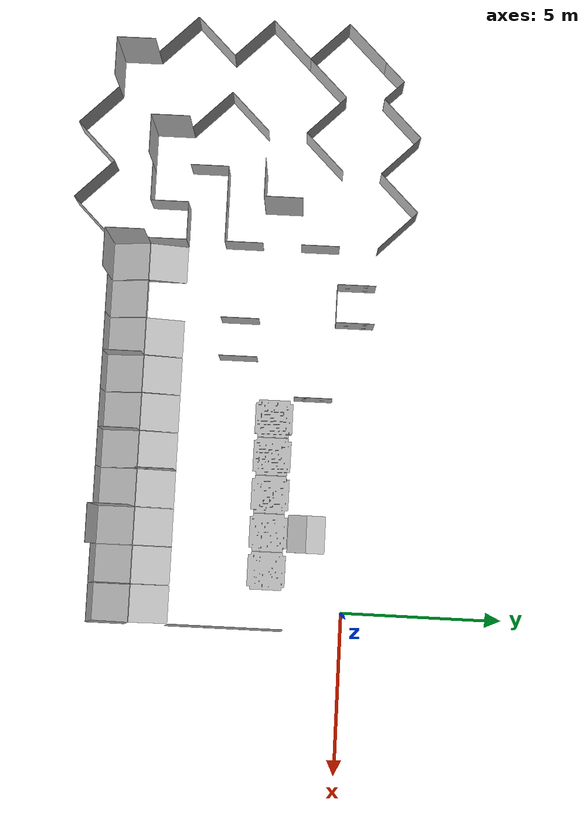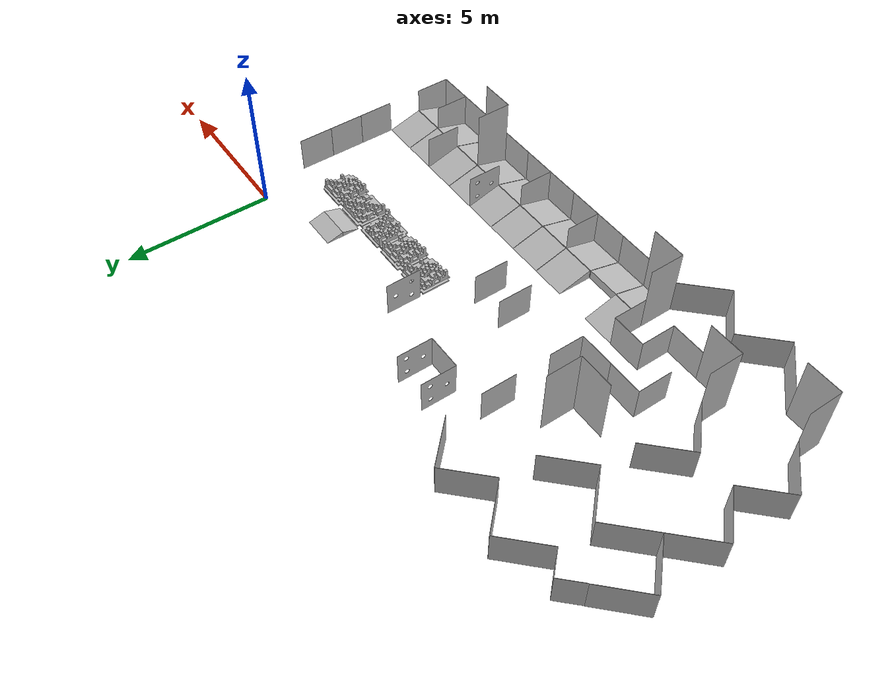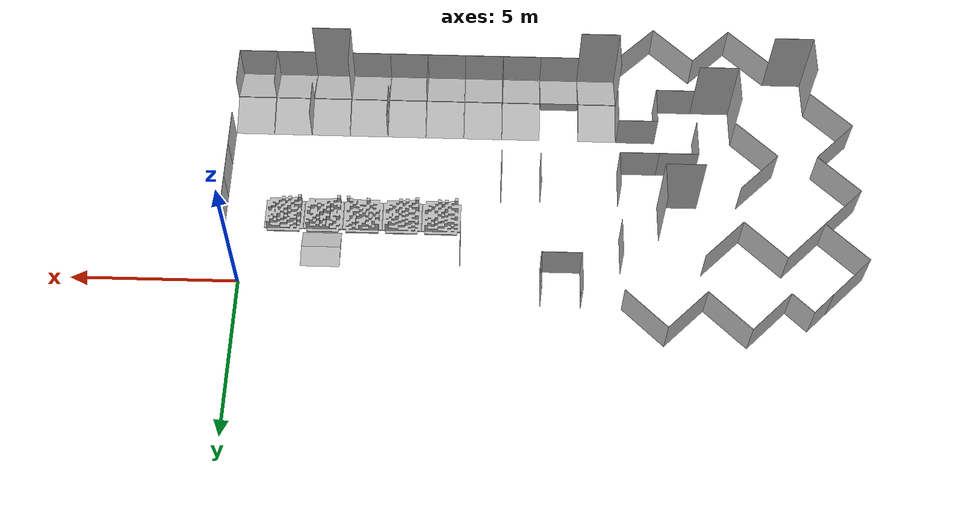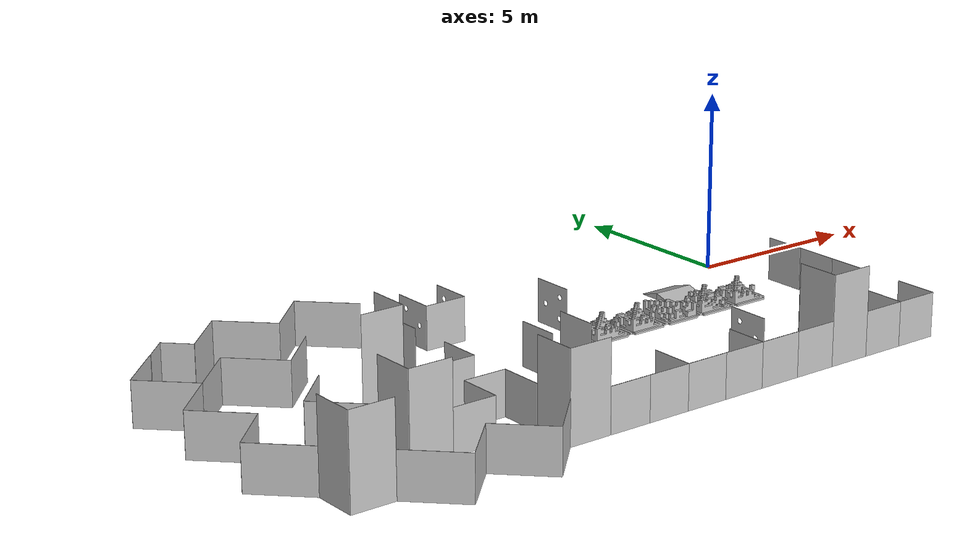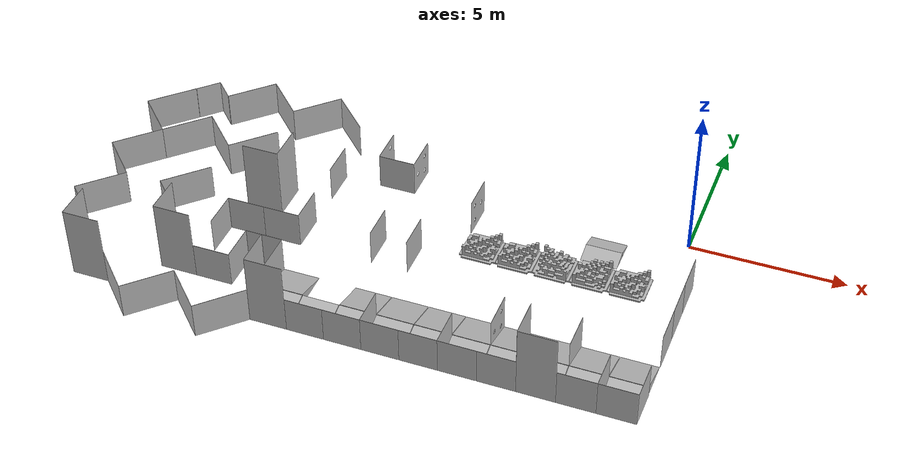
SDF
<sdf version="1.4">
 <world name="default">
  <include><uri>model://sun</uri></include>
  <model name="small_wall_30">
   <static>true</static>
   <link name="small_wall_30_link">
    <pose>1.2 -7.2 0 0 0 -4.71239</pose>
    <collision name="small_wall_30_collision">
     <geometry><mesh><uri>file://robocup/walls/small_wall.dae</uri><scale>1 1 1</scale></mesh></geometry>
    </collision>
    <visual name="small_wall_30_visual">
     <cast_shadows>false</cast_shadows>
     <geometry><mesh><uri>file://robocup/walls/small_wall.dae</uri><scale>1 1 1</scale></mesh></geometry>
    </visual>
   </link>
  </model>
  <model name="small_wall_31">
   <static>true</static>
   <link name="small_wall_31_link">
    <pose>0 -7.2 0 0 0 -3.14159</pose>
    <collision name="small_wall_31_collision">
     <geometry><mesh><uri>file://robocup/walls/small_wall.dae</uri><scale>1 1 1</scale></mesh></geometry>
    </collision>
    <visual name="small_wall_31_visual">
     <cast_shadows>false</cast_shadows>
     <geometry><mesh><uri>file://robocup/walls/small_wall.dae</uri><scale>1 1 1</scale></mesh></geometry>
    </visual>
   </link>
  </model>
  <model name="small_wall_32">
   <static>true</static>
   <link name="small_wall_32_link">
    <pose>0 -7.2 0 0 0 -4.71239</pose>
    <collision name="small_wall_32_collision">
     <geometry><mesh><uri>file://robocup/walls/small_wall.dae</uri><scale>1 1 1</scale></mesh></geometry>
    </collision>
    <visual name="small_wall_32_visual">
     <cast_shadows>false</cast_shadows>
     <geometry><mesh><uri>file://robocup/walls/small_wall.dae</uri><scale>1 1 1</scale></mesh></geometry>
    </visual>
   </link>
  </model>
  <model name="small_wall_33">
   <static>true</static>
   <link name="small_wall_33_link">
    <pose>-1.2 -7.2 0 0 0 -3.14159</pose>
    <collision name="small_wall_33_collision">
     <geometry><mesh><uri>file://robocup/walls/small_wall.dae</uri><scale>1 1 1</scale></mesh></geometry>
    </collision>
    <visual name="small_wall_33_visual">
     <cast_shadows>false</cast_shadows>
     <geometry><mesh><uri>file://robocup/walls/small_wall.dae</uri><scale>1 1 1</scale></mesh></geometry>
    </visual>
   </link>
  </model>
  <model name="tall_wall_10">
   <static>true</static>
   <link name="tall_wall_10_link">
    <pose>-2.4 -8.4 0 0 0 0</pose>
    <collision name="tall_wall_10_collision">
     <geometry><mesh><uri>file://robocup/walls/tall_wall.dae</uri><scale>1 1 1</scale></mesh></geometry>
    </collision>
    <visual name="tall_wall_10_visual">
     <cast_shadows>false</cast_shadows>
     <geometry><mesh><uri>file://robocup/walls/tall_wall.dae</uri><scale>1 1 1</scale></mesh></geometry>
    </visual>
   </link>
  </model>
  <model name="tall_wall_11">
   <static>true</static>
   <link name="tall_wall_11_link">
    <pose>-3.6 -7.2 0 0 0 -1.5708</pose>
    <collision name="tall_wall_11_collision">
     <geometry><mesh><uri>file://robocup/walls/tall_wall.dae</uri><scale>1 1 1</scale></mesh></geometry>
    </collision>
    <visual name="tall_wall_11_visual">
     <cast_shadows>false</cast_shadows>
     <geometry><mesh><uri>file://robocup/walls/tall_wall.dae</uri><scale>1 1 1</scale></mesh></geometry>
    </visual>
   </link>
  </model>
  <model name="small_wall_34">
   <static>true</static>
   <link name="small_wall_34_link">
    <pose>-3.6 -8.4 0 0 0 0</pose>
    <collision name="small_wall_34_collision">
     <geometry><mesh><uri>file://robocup/walls/small_wall.dae</uri><scale>1 1 1</scale></mesh></geometry>
    </collision>
    <visual name="small_wall_34_visual">
     <cast_shadows>false</cast_shadows>
     <geometry><mesh><uri>file://robocup/walls/small_wall.dae</uri><scale>1 1 1</scale></mesh></geometry>
    </visual>
   </link>
  </model>
  <model name="small_wall_35">
   <static>true</static>
   <link name="small_wall_35_link">
    <pose>-4.8 -7.2 0 0 0 -3.14159</pose>
    <collision name="small_wall_35_collision">
     <geometry><mesh><uri>file://robocup/walls/small_wall.dae</uri><scale>1 1 1</scale></mesh></geometry>
    </collision>
    <visual name="small_wall_35_visual">
     <cast_shadows>false</cast_shadows>
     <geometry><mesh><uri>file://robocup/walls/small_wall.dae</uri><scale>1 1 1</scale></mesh></geometry>
    </visual>
   </link>
  </model>
  <model name="small_wall_36">
   <static>true</static>
   <link name="small_wall_36_link">
    <pose>-6 -7.2 0 0 0 -1.5708</pose>
    <collision name="small_wall_36_collision">
     <geometry><mesh><uri>file://robocup/walls/small_wall.dae</uri><scale>1 1 1</scale></mesh></geometry>
    </collision>
    <visual name="small_wall_36_visual">
     <cast_shadows>false</cast_shadows>
     <geometry><mesh><uri>file://robocup/walls/small_wall.dae</uri><scale>1 1 1</scale></mesh></geometry>
    </visual>
   </link>
  </model>
  <model name="small_wall_37">
   <static>true</static>
   <link name="small_wall_37_link">
    <pose>-6 -8.4 0 0 0 0</pose>
    <collision name="small_wall_37_collision">
     <geometry><mesh><uri>file://robocup/walls/small_wall.dae</uri><scale>1 1 1</scale></mesh></geometry>
    </collision>
    <visual name="small_wall_37_visual">
     <cast_shadows>false</cast_shadows>
     <geometry><mesh><uri>file://robocup/walls/small_wall.dae</uri><scale>1 1 1</scale></mesh></geometry>
    </visual>
   </link>
  </model>
  <model name="small_wall_38">
   <static>true</static>
   <link name="small_wall_38_link">
    <pose>-7.2 -7.2 0 0 0 -3.14159</pose>
    <collision name="small_wall_38_collision">
     <geometry><mesh><uri>file://robocup/walls/small_wall.dae</uri><scale>1 1 1</scale></mesh></geometry>
    </collision>
    <visual name="small_wall_38_visual">
     <cast_shadows>false</cast_shadows>
     <geometry><mesh><uri>file://robocup/walls/small_wall.dae</uri><scale>1 1 1</scale></mesh></geometry>
    </visual>
   </link>
  </model>
  <model name="small_wall_39">
   <static>true</static>
   <link name="small_wall_39_link">
    <pose>-8.4 -7.2 0 0 0 -3.14159</pose>
    <collision name="small_wall_39_collision">
     <geometry><mesh><uri>file://robocup/walls/small_wall.dae</uri><scale>1 1 1</scale></mesh></geometry>
    </collision>
    <visual name="small_wall_39_visual">
     <cast_shadows>false</cast_shadows>
     <geometry><mesh><uri>file://robocup/walls/small_wall.dae</uri><scale>1 1 1</scale></mesh></geometry>
    </visual>
   </link>
  </model>
  <model name="tall_wall_12">
   <static>true</static>
   <link name="tall_wall_12_link">
    <pose>-10.8 -7.2 0 0 0 -3.14159</pose>
    <collision name="tall_wall_12_collision">
     <geometry><mesh><uri>file://robocup/walls/tall_wall.dae</uri><scale>1 1 1</scale></mesh></geometry>
    </collision>
    <visual name="tall_wall_12_visual">
     <cast_shadows>false</cast_shadows>
     <geometry><mesh><uri>file://robocup/walls/tall_wall.dae</uri><scale>1 1 1</scale></mesh></geometry>
    </visual>
   </link>
  </model>
  <model name="tall_wall_13">
   <static>true</static>
   <link name="tall_wall_13_link">
    <pose>-12 -7.2 0 0 0 -1.5708</pose>
    <collision name="tall_wall_13_collision">
     <geometry><mesh><uri>file://robocup/walls/tall_wall.dae</uri><scale>1 1 1</scale></mesh></geometry>
    </collision>
    <visual name="tall_wall_13_visual">
     <cast_shadows>false</cast_shadows>
     <geometry><mesh><uri>file://robocup/walls/tall_wall.dae</uri><scale>1 1 1</scale></mesh></geometry>
    </visual>
   </link>
  </model>
  <model name="small_wall_40">
   <static>true</static>
   <link name="small_wall_40_link">
    <pose>-9.6 -7.2 0 0 0 -3.14159</pose>
    <collision name="small_wall_40_collision">
     <geometry><mesh><uri>file://robocup/walls/small_wall.dae</uri><scale>1 1 1</scale></mesh></geometry>
    </collision>
    <visual name="small_wall_40_visual">
     <cast_shadows>false</cast_shadows>
     <geometry><mesh><uri>file://robocup/walls/small_wall.dae</uri><scale>1 1 1</scale></mesh></geometry>
    </visual>
   </link>
  </model>
  <model name="small_wall_41">
   <static>true</static>
   <link name="small_wall_41_link">
    <pose>-12 -6 0 0 0 0</pose>
    <collision name="small_wall_41_collision">
     <geometry><mesh><uri>file://robocup/walls/small_wall.dae</uri><scale>1 1 1</scale></mesh></geometry>
    </collision>
    <visual name="small_wall_41_visual">
     <cast_shadows>false</cast_shadows>
     <geometry><mesh><uri>file://robocup/walls/small_wall.dae</uri><scale>1 1 1</scale></mesh></geometry>
    </visual>
   </link>
  </model>
  <model name="small_wall_42">
   <static>true</static>
   <link name="small_wall_42_link">
    <pose>-12 -6 0 0 0 -4.71239</pose>
    <collision name="small_wall_42_collision">
     <geometry><mesh><uri>file://robocup/walls/small_wall.dae</uri><scale>1 1 1</scale></mesh></geometry>
    </collision>
    <visual name="small_wall_42_visual">
     <cast_shadows>false</cast_shadows>
     <geometry><mesh><uri>file://robocup/walls/small_wall.dae</uri><scale>1 1 1</scale></mesh></geometry>
    </visual>
   </link>
  </model>
  <model name="tall_wall_14">
   <static>true</static>
   <link name="tall_wall_14_link">
    <pose>-14.4 -6 0 0 0 -3.14159</pose>
    <collision name="tall_wall_14_collision">
     <geometry><mesh><uri>file://robocup/walls/tall_wall.dae</uri><scale>1 1 1</scale></mesh></geometry>
    </collision>
    <visual name="tall_wall_14_visual">
     <cast_shadows>false</cast_shadows>
     <geometry><mesh><uri>file://robocup/walls/tall_wall.dae</uri><scale>1 1 1</scale></mesh></geometry>
    </visual>
   </link>
  </model>
  <model name="tall_wall_15">
   <static>true</static>
   <link name="tall_wall_15_link">
    <pose>-14.4 -6 0 0 0 -4.71239</pose>
    <collision name="tall_wall_15_collision">
     <geometry><mesh><uri>file://robocup/walls/tall_wall.dae</uri><scale>1 1 1</scale></mesh></geometry>
    </collision>
    <visual name="tall_wall_15_visual">
     <cast_shadows>false</cast_shadows>
     <geometry><mesh><uri>file://robocup/walls/tall_wall.dae</uri><scale>1 1 1</scale></mesh></geometry>
    </visual>
   </link>
  </model>
  <model name="small_wall_43">
   <static>true</static>
   <link name="small_wall_43_link">
    <pose>-13.2 -6 0 0 0 -3.14159</pose>
    <collision name="small_wall_43_collision">
     <geometry><mesh><uri>file://robocup/walls/small_wall.dae</uri><scale>1 1 1</scale></mesh></geometry>
    </collision>
    <visual name="small_wall_43_visual">
     <cast_shadows>false</cast_shadows>
     <geometry><mesh><uri>file://robocup/walls/small_wall.dae</uri><scale>1 1 1</scale></mesh></geometry>
    </visual>
   </link>
  </model>
  <model name="small_wall_44">
   <static>true</static>
   <link name="small_wall_44_link">
    <pose>-13.2 -4.8 0 0 0 -4.71239</pose>
    <collision name="small_wall_44_collision">
     <geometry><mesh><uri>file://robocup/walls/small_wall.dae</uri><scale>1 1 1</scale></mesh></geometry>
    </collision>
    <visual name="small_wall_44_visual">
     <cast_shadows>false</cast_shadows>
     <geometry><mesh><uri>file://robocup/walls/small_wall.dae</uri><scale>1 1 1</scale></mesh></geometry>
    </visual>
   </link>
  </model>
  <model name="small_wall_45">
   <static>true</static>
   <link name="small_wall_45_link">
    <pose>-13.2 -3.6 0 0 0 -3.14159</pose>
    <collision name="small_wall_45_collision">
     <geometry><mesh><uri>file://robocup/walls/small_wall.dae</uri><scale>1 1 1</scale></mesh></geometry>
    </collision>
    <visual name="small_wall_45_visual">
     <cast_shadows>false</cast_shadows>
     <geometry><mesh><uri>file://robocup/walls/small_wall.dae</uri><scale>1 1 1</scale></mesh></geometry>
    </visual>
   </link>
  </model>
  <model name="small_wall_46">
   <static>true</static>
   <link name="small_wall_46_link">
    <pose>-12 -3.6 0 0 0 -3.14159</pose>
    <collision name="small_wall_46_collision">
     <geometry><mesh><uri>file://robocup/walls/small_wall.dae</uri><scale>1 1 1</scale></mesh></geometry>
    </collision>
    <visual name="small_wall_46_visual">
     <cast_shadows>false</cast_shadows>
     <geometry><mesh><uri>file://robocup/walls/small_wall.dae</uri><scale>1 1 1</scale></mesh></geometry>
    </visual>
   </link>
  </model>
  <model name="small_wall_47">
   <static>true</static>
   <link name="small_wall_47_link">
    <pose>-10.8 -3.6 0 0 0 -4.71239</pose>
    <collision name="small_wall_47_collision">
     <geometry><mesh><uri>file://robocup/walls/small_wall.dae</uri><scale>1 1 1</scale></mesh></geometry>
    </collision>
    <visual name="small_wall_47_visual">
     <cast_shadows>false</cast_shadows>
     <geometry><mesh><uri>file://robocup/walls/small_wall.dae</uri><scale>1 1 1</scale></mesh></geometry>
    </visual>
   </link>
  </model>
  <model name="tall_wall_16">
   <static>true</static>
   <link name="tall_wall_16_link">
    <pose>-13.2 -2.4 0 0 0 -1.5708</pose>
    <collision name="tall_wall_16_collision">
     <geometry><mesh><uri>file://robocup/walls/tall_wall.dae</uri><scale>1 1 1</scale></mesh></geometry>
    </collision>
    <visual name="tall_wall_16_visual">
     <cast_shadows>false</cast_shadows>
     <geometry><mesh><uri>file://robocup/walls/tall_wall.dae</uri><scale>1 1 1</scale></mesh></geometry>
    </visual>
   </link>
  </model>
  <model name="tall_wall_17">
   <static>true</static>
   <link name="tall_wall_17_link">
    <pose>-13.2 -3.6 0 0 0 0</pose>
    <collision name="tall_wall_17_collision">
     <geometry><mesh><uri>file://robocup/walls/tall_wall.dae</uri><scale>1 1 1</scale></mesh></geometry>
    </collision>
    <visual name="tall_wall_17_visual">
     <cast_shadows>false</cast_shadows>
     <geometry><mesh><uri>file://robocup/walls/tall_wall.dae</uri><scale>1 1 1</scale></mesh></geometry>
    </visual>
   </link>
  </model>
  <model name="wall_diag_120_1">
   <static>true</static>
   <link name="wall_diag_120_1_link">
    <pose>-12 1.2 0 0 0 -1.5708</pose>
    <collision name="wall_diag_120_1_collision">
     <geometry><mesh><uri>file://robocup/walls/wall_diag_120.dae</uri><scale>1 1 1</scale></mesh></geometry>
    </collision>
    <visual name="wall_diag_120_1_visual">
     <cast_shadows>false</cast_shadows>
     <geometry><mesh><uri>file://robocup/walls/wall_diag_120.dae</uri><scale>1 1 1</scale></mesh></geometry>
    </visual>
   </link>
  </model>
  <model name="wall_diag_120_2">
   <static>true</static>
   <link name="wall_diag_120_2_link">
    <pose>-18 -6 0 0 0 -4.71239</pose>
    <collision name="wall_diag_120_2_collision">
     <geometry><mesh><uri>file://robocup/walls/wall_diag_120.dae</uri><scale>1 1 1</scale></mesh></geometry>
    </collision>
    <visual name="wall_diag_120_2_visual">
     <cast_shadows>false</cast_shadows>
     <geometry><mesh><uri>file://robocup/walls/wall_diag_120.dae</uri><scale>1 1 1</scale></mesh></geometry>
    </visual>
   </link>
  </model>
  <model name="full_ramp_1">
   <static>true</static>
   <link name="full_ramp_1_link">
    <pose>0 -6 0 0 0 0</pose>
    <collision name="full_ramp_1_collision">
     <geometry><mesh><uri>file://robocup/ramps/full_ramp.dae</uri><scale>1 1 1</scale></mesh></geometry>
    </collision>
    <visual name="full_ramp_1_visual">
     <cast_shadows>false</cast_shadows>
     <geometry><mesh><uri>file://robocup/ramps/full_ramp.dae</uri><scale>1 1 1</scale></mesh></geometry>
    </visual>
   </link>
  </model>
  <model name="full_ramp_2">
   <static>true</static>
   <link name="full_ramp_2_link">
    <pose>-1.2 -6 0 0 0 0</pose>
    <collision name="full_ramp_2_collision">
     <geometry><mesh><uri>file://robocup/ramps/full_ramp.dae</uri><scale>1 1 1</scale></mesh></geometry>
    </collision>
    <visual name="full_ramp_2_visual">
     <cast_shadows>false</cast_shadows>
     <geometry><mesh><uri>file://robocup/ramps/full_ramp.dae</uri><scale>1 1 1</scale></mesh></geometry>
    </visual>
   </link>
  </model>
  <model name="full_ramp_3">
   <static>true</static>
   <link name="full_ramp_3_link">
    <pose>-2.4 -6 0 0 0 0</pose>
    <collision name="full_ramp_3_collision">
     <geometry><mesh><uri>file://robocup/ramps/full_ramp.dae</uri><scale>1 1 1</scale></mesh></geometry>
    </collision>
    <visual name="full_ramp_3_visual">
     <cast_shadows>false</cast_shadows>
     <geometry><mesh><uri>file://robocup/ramps/full_ramp.dae</uri><scale>1 1 1</scale></mesh></geometry>
    </visual>
   </link>
  </model>
  <model name="full_ramp_4">
   <static>true</static>
   <link name="full_ramp_4_link">
    <pose>-3.6 -6 0 0 0 0</pose>
    <collision name="full_ramp_4_collision">
     <geometry><mesh><uri>file://robocup/ramps/full_ramp.dae</uri><scale>1 1 1</scale></mesh></geometry>
    </collision>
    <visual name="full_ramp_4_visual">
     <cast_shadows>false</cast_shadows>
     <geometry><mesh><uri>file://robocup/ramps/full_ramp.dae</uri><scale>1 1 1</scale></mesh></geometry>
    </visual>
   </link>
  </model>
  <model name="full_ramp_5">
   <static>true</static>
   <link name="full_ramp_5_link">
    <pose>-4.8 -6 0 0 0 0</pose>
    <collision name="full_ramp_5_collision">
     <geometry><mesh><uri>file://robocup/ramps/full_ramp.dae</uri><scale>1 1 1</scale></mesh></geometry>
    </collision>
    <visual name="full_ramp_5_visual">
     <cast_shadows>false</cast_shadows>
     <geometry><mesh><uri>file://robocup/ramps/full_ramp.dae</uri><scale>1 1 1</scale></mesh></geometry>
    </visual>
   </link>
  </model>
  <model name="full_ramp_6">
   <static>true</static>
   <link name="full_ramp_6_link">
    <pose>-6 -6 0 0 0 0</pose>
    <collision name="full_ramp_6_collision">
     <geometry><mesh><uri>file://robocup/ramps/full_ramp.dae</uri><scale>1 1 1</scale></mesh></geometry>
    </collision>
    <visual name="full_ramp_6_visual">
     <cast_shadows>false</cast_shadows>
     <geometry><mesh><uri>file://robocup/ramps/full_ramp.dae</uri><scale>1 1 1</scale></mesh></geometry>
    </visual>
   </link>
  </model>
  <model name="full_ramp_7">
   <static>true</static>
   <link name="full_ramp_7_link">
    <pose>-7.2 -6 0 0 0 0</pose>
    <collision name="full_ramp_7_collision">
     <geometry><mesh><uri>file://robocup/ramps/full_ramp.dae</uri><scale>1 1 1</scale></mesh></geometry>
    </collision>
    <visual name="full_ramp_7_visual">
     <cast_shadows>false</cast_shadows>
     <geometry><mesh><uri>file://robocup/ramps/full_ramp.dae</uri><scale>1 1 1</scale></mesh></geometry>
    </visual>
   </link>
  </model>
  <model name="full_ramp_8">
   <static>true</static>
   <link name="full_ramp_8_link">
    <pose>-8.4 -6 0 0 0 0</pose>
    <collision name="full_ramp_8_collision">
     <geometry><mesh><uri>file://robocup/ramps/full_ramp.dae</uri><scale>1 1 1</scale></mesh></geometry>
    </collision>
    <visual name="full_ramp_8_visual">
     <cast_shadows>false</cast_shadows>
     <geometry><mesh><uri>file://robocup/ramps/full_ramp.dae</uri><scale>1 1 1</scale></mesh></geometry>
    </visual>
   </link>
  </model>
  <model name="full_ramp_9">
   <static>true</static>
   <link name="full_ramp_9_link">
    <pose>-10.8 -6 0 0 0 0</pose>
    <collision name="full_ramp_9_collision">
     <geometry><mesh><uri>file://robocup/ramps/full_ramp.dae</uri><scale>1 1 1</scale></mesh></geometry>
    </collision>
    <visual name="full_ramp_9_visual">
     <cast_shadows>false</cast_shadows>
     <geometry><mesh><uri>file://robocup/ramps/full_ramp.dae</uri><scale>1 1 1</scale></mesh></geometry>
    </visual>
   </link>
  </model>
  <model name="full_ramp_10">
   <static>true</static>
   <link name="full_ramp_10_link">
    <pose>-10.8 -7.2 0 0 0 -3.14159</pose>
    <collision name="full_ramp_10_collision">
     <geometry><mesh><uri>file://robocup/ramps/full_ramp.dae</uri><scale>1 1 1</scale></mesh></geometry>
    </collision>
    <visual name="full_ramp_10_visual">
     <cast_shadows>false</cast_shadows>
     <geometry><mesh><uri>file://robocup/ramps/full_ramp.dae</uri><scale>1 1 1</scale></mesh></geometry>
    </visual>
   </link>
  </model>
  <model name="full_ramp_11">
   <static>true</static>
   <link name="full_ramp_11_link">
    <pose>-9.6 -7.2 0 0 0 -3.14159</pose>
    <collision name="full_ramp_11_collision">
     <geometry><mesh><uri>file://robocup/ramps/full_ramp.dae</uri><scale>1 1 1</scale></mesh></geometry>
    </collision>
    <visual name="full_ramp_11_visual">
     <cast_shadows>false</cast_shadows>
     <geometry><mesh><uri>file://robocup/ramps/full_ramp.dae</uri><scale>1 1 1</scale></mesh></geometry>
    </visual>
   </link>
  </model>
  <model name="full_ramp_12">
   <static>true</static>
   <link name="full_ramp_12_link">
    <pose>-8.4 -7.2 0 0 0 -3.14159</pose>
    <collision name="full_ramp_12_collision">
     <geometry><mesh><uri>file://robocup/ramps/full_ramp.dae</uri><scale>1 1 1</scale></mesh></geometry>
    </collision>
    <visual name="full_ramp_12_visual">
     <cast_shadows>false</cast_shadows>
     <geometry><mesh><uri>file://robocup/ramps/full_ramp.dae</uri><scale>1 1 1</scale></mesh></geometry>
    </visual>
   </link>
  </model>
  <model name="full_ramp_13">
   <static>true</static>
   <link name="full_ramp_13_link">
    <pose>-7.2 -7.2 0 0 0 -3.14159</pose>
    <collision name="full_ramp_13_collision">
     <geometry><mesh><uri>file://robocup/ramps/full_ramp.dae</uri><scale>1 1 1</scale></mesh></geometry>
    </collision>
    <visual name="full_ramp_13_visual">
     <cast_shadows>false</cast_shadows>
     <geometry><mesh><uri>file://robocup/ramps/full_ramp.dae</uri><scale>1 1 1</scale></mesh></geometry>
    </visual>
   </link>
  </model>
  <model name="full_ramp_14">
   <static>true</static>
   <link name="full_ramp_14_link">
    <pose>-6 -7.2 0 0 0 -3.14159</pose>
    <collision name="full_ramp_14_collision">
     <geometry><mesh><uri>file://robocup/ramps/full_ramp.dae</uri><scale>1 1 1</scale></mesh></geometry>
    </collision>
    <visual name="full_ramp_14_visual">
     <cast_shadows>false</cast_shadows>
     <geometry><mesh><uri>file://robocup/ramps/full_ramp.dae</uri><scale>1 1 1</scale></mesh></geometry>
    </visual>
   </link>
  </model>
  <model name="full_ramp_15">
   <static>true</static>
   <link name="full_ramp_15_link">
    <pose>-4.8 -7.2 0 0 0 -3.14159</pose>
    <collision name="full_ramp_15_collision">
     <geometry><mesh><uri>file://robocup/ramps/full_ramp.dae</uri><scale>1 1 1</scale></mesh></geometry>
    </collision>
    <visual name="full_ramp_15_visual">
     <cast_shadows>false</cast_shadows>
     <geometry><mesh><uri>file://robocup/ramps/full_ramp.dae</uri><scale>1 1 1</scale></mesh></geometry>
    </visual>
   </link>
  </model>
  <model name="full_ramp_16">
   <static>true</static>
   <link name="full_ramp_16_link">
    <pose>-3.6 -7.2 0 0 0 -3.14159</pose>
    <collision name="full_ramp_16_collision">
     <geometry><mesh><uri>file://robocup/ramps/full_ramp.dae</uri><scale>1 1 1</scale></mesh></geometry>
    </collision>
    <visual name="full_ramp_16_visual">
     <cast_shadows>false</cast_shadows>
     <geometry><mesh><uri>file://robocup/ramps/full_ramp.dae</uri><scale>1 1 1</scale></mesh></geometry>
    </visual>
   </link>
  </model>
  <model name="full_ramp_17">
   <static>true</static>
   <link name="full_ramp_17_link">
    <pose>-2.4 -7.2 0 0 0 -3.14159</pose>
    <collision name="full_ramp_17_collision">
     <geometry><mesh><uri>file://robocup/ramps/full_ramp.dae</uri><scale>1 1 1</scale></mesh></geometry>
    </collision>
    <visual name="full_ramp_17_visual">
     <cast_shadows>false</cast_shadows>
     <geometry><mesh><uri>file://robocup/ramps/full_ramp.dae</uri><scale>1 1 1</scale></mesh></geometry>
    </visual>
   </link>
  </model>
  <model name="full_ramp_18">
   <static>true</static>
   <link name="full_ramp_18_link">
    <pose>-1.2 -7.2 0 0 0 -3.14159</pose>
    <collision name="full_ramp_18_collision">
     <geometry><mesh><uri>file://robocup/ramps/full_ramp.dae</uri><scale>1 1 1</scale></mesh></geometry>
    </collision>
    <visual name="full_ramp_18_visual">
     <cast_shadows>false</cast_shadows>
     <geometry><mesh><uri>file://robocup/ramps/full_ramp.dae</uri><scale>1 1 1</scale></mesh></geometry>
    </visual>
   </link>
  </model>
  <model name="full_ramp_19">
   <static>true</static>
   <link name="full_ramp_19_link">
    <pose>0 -7.2 0 0 0 -3.14159</pose>
    <collision name="full_ramp_19_collision">
     <geometry><mesh><uri>file://robocup/ramps/full_ramp.dae</uri><scale>1 1 1</scale></mesh></geometry>
    </collision>
    <visual name="full_ramp_19_visual">
     <cast_shadows>false</cast_shadows>
     <geometry><mesh><uri>file://robocup/ramps/full_ramp.dae</uri><scale>1 1 1</scale></mesh></geometry>
    </visual>
   </link>
  </model>
  <model name="small_wall_48">
   <static>true</static>
   <link name="small_wall_48_link">
    <pose>1.2 -2.4 0 0 0 -4.71239</pose>
    <collision name="small_wall_48_collision">
     <geometry><mesh><uri>file://robocup/walls/small_wall.dae</uri><scale>1 1 1</scale></mesh></geometry>
    </collision>
    <visual name="small_wall_48_visual">
     <cast_shadows>false</cast_shadows>
     <geometry><mesh><uri>file://robocup/walls/small_wall.dae</uri><scale>1 1 1</scale></mesh></geometry>
    </visual>
   </link>
  </model>
  <model name="small_wall_49">
   <static>true</static>
   <link name="small_wall_49_link">
    <pose>0 -3.6 0 0 0 -1.5708</pose>
    <collision name="small_wall_49_collision">
     <geometry><mesh><uri>file://robocup/walls/small_wall.dae</uri><scale>1 1 1</scale></mesh></geometry>
    </collision>
    <visual name="small_wall_49_visual">
     <cast_shadows>false</cast_shadows>
     <geometry><mesh><uri>file://robocup/walls/small_wall.dae</uri><scale>1 1 1</scale></mesh></geometry>
    </visual>
   </link>
  </model>
  <model name="small_wall_50">
   <static>true</static>
   <link name="small_wall_50_link">
    <pose>0 -4.8 0 0 0 -1.5708</pose>
    <collision name="small_wall_50_collision">
     <geometry><mesh><uri>file://robocup/walls/small_wall.dae</uri><scale>1 1 1</scale></mesh></geometry>
    </collision>
    <visual name="small_wall_50_visual">
     <cast_shadows>false</cast_shadows>
     <geometry><mesh><uri>file://robocup/walls/small_wall.dae</uri><scale>1 1 1</scale></mesh></geometry>
    </visual>
   </link>
  </model>
  <model name="wall_diag_120_3">
   <static>true</static>
   <link name="wall_diag_120_3_link">
    <pose>-13.2 1.2 0 0 0 0</pose>
    <collision name="wall_diag_120_3_collision">
     <geometry><mesh><uri>file://robocup/walls/wall_diag_120.dae</uri><scale>1 1 1</scale></mesh></geometry>
    </collision>
    <visual name="wall_diag_120_3_visual">
     <cast_shadows>false</cast_shadows>
     <geometry><mesh><uri>file://robocup/walls/wall_diag_120.dae</uri><scale>1 1 1</scale></mesh></geometry>
    </visual>
   </link>
  </model>
  <model name="wall_diag_120_4">
   <static>true</static>
   <link name="wall_diag_120_4_link">
    <pose>-15.6 1.2 0 0 0 0</pose>
    <collision name="wall_diag_120_4_collision">
     <geometry><mesh><uri>file://robocup/walls/wall_diag_120.dae</uri><scale>1 1 1</scale></mesh></geometry>
    </collision>
    <visual name="wall_diag_120_4_visual">
     <cast_shadows>false</cast_shadows>
     <geometry><mesh><uri>file://robocup/walls/wall_diag_120.dae</uri><scale>1 1 1</scale></mesh></geometry>
    </visual>
   </link>
  </model>
  <model name="wall_diag_120_5">
   <static>true</static>
   <link name="wall_diag_120_5_link">
    <pose>-14.4 1.2 0 0 0 -4.71239</pose>
    <collision name="wall_diag_120_5_collision">
     <geometry><mesh><uri>file://robocup/walls/wall_diag_120.dae</uri><scale>1 1 1</scale></mesh></geometry>
    </collision>
    <visual name="wall_diag_120_5_visual">
     <cast_shadows>false</cast_shadows>
     <geometry><mesh><uri>file://robocup/walls/wall_diag_120.dae</uri><scale>1 1 1</scale></mesh></geometry>
    </visual>
   </link>
  </model>
  <model name="wall_diag_120_6">
   <static>true</static>
   <link name="wall_diag_120_6_link">
    <pose>-18 0 0 0 0 0</pose>
    <collision name="wall_diag_120_6_collision">
     <geometry><mesh><uri>file://robocup/walls/wall_diag_120.dae</uri><scale>1 1 1</scale></mesh></geometry>
    </collision>
    <visual name="wall_diag_120_6_visual">
     <cast_shadows>false</cast_shadows>
     <geometry><mesh><uri>file://robocup/walls/wall_diag_120.dae</uri><scale>1 1 1</scale></mesh></geometry>
    </visual>
   </link>
  </model>
  <model name="wall_diag_120_7">
   <static>true</static>
   <link name="wall_diag_120_7_link">
    <pose>-18 -1.2 0 0 0 -1.5708</pose>
    <collision name="wall_diag_120_7_collision">
     <geometry><mesh><uri>file://robocup/walls/wall_diag_120.dae</uri><scale>1 1 1</scale></mesh></geometry>
    </collision>
    <visual name="wall_diag_120_7_visual">
     <cast_shadows>false</cast_shadows>
     <geometry><mesh><uri>file://robocup/walls/wall_diag_120.dae</uri><scale>1 1 1</scale></mesh></geometry>
    </visual>
   </link>
  </model>
  <model name="wall_diag_120_8">
   <static>true</static>
   <link name="wall_diag_120_8_link">
    <pose>-18 -4.8 0 0 0 0</pose>
    <collision name="wall_diag_120_8_collision">
     <geometry><mesh><uri>file://robocup/walls/wall_diag_120.dae</uri><scale>1 1 1</scale></mesh></geometry>
    </collision>
    <visual name="wall_diag_120_8_visual">
     <cast_shadows>false</cast_shadows>
     <geometry><mesh><uri>file://robocup/walls/wall_diag_120.dae</uri><scale>1 1 1</scale></mesh></geometry>
    </visual>
   </link>
  </model>
  <model name="wall_diag_120_9">
   <static>true</static>
   <link name="wall_diag_120_9_link">
    <pose>-18 -2.4 0 0 0 -3.14159</pose>
    <collision name="wall_diag_120_9_collision">
     <geometry><mesh><uri>file://robocup/walls/wall_diag_120.dae</uri><scale>1 1 1</scale></mesh></geometry>
    </collision>
    <visual name="wall_diag_120_9_visual">
     <cast_shadows>false</cast_shadows>
     <geometry><mesh><uri>file://robocup/walls/wall_diag_120.dae</uri><scale>1 1 1</scale></mesh></geometry>
    </visual>
   </link>
  </model>
  <model name="wall_diag_120_10">
   <static>true</static>
   <link name="wall_diag_120_10_link">
    <pose>-18 -3.6 0 0 0 -1.5708</pose>
    <collision name="wall_diag_120_10_collision">
     <geometry><mesh><uri>file://robocup/walls/wall_diag_120.dae</uri><scale>1 1 1</scale></mesh></geometry>
    </collision>
    <visual name="wall_diag_120_10_visual">
     <cast_shadows>false</cast_shadows>
     <geometry><mesh><uri>file://robocup/walls/wall_diag_120.dae</uri><scale>1 1 1</scale></mesh></geometry>
    </visual>
   </link>
  </model>
  <model name="wall_diag_120_11">
   <static>true</static>
   <link name="wall_diag_120_11_link">
    <pose>-15.6 -8.4 0 0 0 -1.5708</pose>
    <collision name="wall_diag_120_11_collision">
     <geometry><mesh><uri>file://robocup/walls/wall_diag_120.dae</uri><scale>1 1 1</scale></mesh></geometry>
    </collision>
    <visual name="wall_diag_120_11_visual">
     <cast_shadows>false</cast_shadows>
     <geometry><mesh><uri>file://robocup/walls/wall_diag_120.dae</uri><scale>1 1 1</scale></mesh></geometry>
    </visual>
   </link>
  </model>
  <model name="wall_diag_120_12">
   <static>true</static>
   <link name="wall_diag_120_12_link">
    <pose>-14.4 -8.4 0 0 0 0</pose>
    <collision name="wall_diag_120_12_collision">
     <geometry><mesh><uri>file://robocup/walls/wall_diag_120.dae</uri><scale>1 1 1</scale></mesh></geometry>
    </collision>
    <visual name="wall_diag_120_12_visual">
     <cast_shadows>false</cast_shadows>
     <geometry><mesh><uri>file://robocup/walls/wall_diag_120.dae</uri><scale>1 1 1</scale></mesh></geometry>
    </visual>
   </link>
  </model>
  <model name="wall_diag_120_13">
   <static>true</static>
   <link name="wall_diag_120_13_link">
    <pose>-12 -8.4 0 0 0 0</pose>
    <collision name="wall_diag_120_13_collision">
     <geometry><mesh><uri>file://robocup/walls/wall_diag_120.dae</uri><scale>1 1 1</scale></mesh></geometry>
    </collision>
    <visual name="wall_diag_120_13_visual">
     <cast_shadows>false</cast_shadows>
     <geometry><mesh><uri>file://robocup/walls/wall_diag_120.dae</uri><scale>1 1 1</scale></mesh></geometry>
    </visual>
   </link>
  </model>
  <model name="wall_diag_120_14">
   <static>true</static>
   <link name="wall_diag_120_14_link">
    <pose>-13.2 -8.4 0 0 0 -1.5708</pose>
    <collision name="wall_diag_120_14_collision">
     <geometry><mesh><uri>file://robocup/walls/wall_diag_120.dae</uri><scale>1 1 1</scale></mesh></geometry>
    </collision>
    <visual name="wall_diag_120_14_visual">
     <cast_shadows>false</cast_shadows>
     <geometry><mesh><uri>file://robocup/walls/wall_diag_120.dae</uri><scale>1 1 1</scale></mesh></geometry>
    </visual>
   </link>
  </model>
  <model name="corner_diag_120_1">
   <static>true</static>
   <link name="corner_diag_120_1_link">
    <pose>-16.8 1.2 0 0 0 -3.14159</pose>
    <collision name="corner_diag_120_1_collision">
     <geometry><mesh><uri>file://robocup/walls/corner_diag_120.dae</uri><scale>1 1 1</scale></mesh></geometry>
    </collision>
    <visual name="corner_diag_120_1_visual">
     <cast_shadows>false</cast_shadows>
     <geometry><mesh><uri>file://robocup/walls/corner_diag_120.dae</uri><scale>1 1 1</scale></mesh></geometry>
    </visual>
   </link>
  </model>
  <model name="tall_wall_18">
   <static>true</static>
   <link name="tall_wall_18_link">
    <pose>-16.8 -7.2 0 0 0 -4.71239</pose>
    <collision name="tall_wall_18_collision">
     <geometry><mesh><uri>file://robocup/walls/tall_wall.dae</uri><scale>1 1 1</scale></mesh></geometry>
    </collision>
    <visual name="tall_wall_18_visual">
     <cast_shadows>false</cast_shadows>
     <geometry><mesh><uri>file://robocup/walls/tall_wall.dae</uri><scale>1 1 1</scale></mesh></geometry>
    </visual>
   </link>
  </model>
  <model name="tall_wall_19">
   <static>true</static>
   <link name="tall_wall_19_link">
    <pose>-16.8 -7.2 0 0 0 -3.14159</pose>
    <collision name="tall_wall_19_collision">
     <geometry><mesh><uri>file://robocup/walls/tall_wall.dae</uri><scale>1 1 1</scale></mesh></geometry>
    </collision>
    <visual name="tall_wall_19_visual">
     <cast_shadows>false</cast_shadows>
     <geometry><mesh><uri>file://robocup/walls/tall_wall.dae</uri><scale>1 1 1</scale></mesh></geometry>
    </visual>
   </link>
  </model>
  <model name="wall_holes1_2">
   <static>true</static>
   <link name="wall_holes1_2_link">
    <pose>-10.8 0 0 0 0 -1.5708</pose>
    <collision name="wall_holes1_2_collision">
     <geometry><mesh><uri>file://robocup/walls/small_wall_holes1.dae</uri><scale>1 1 1</scale></mesh></geometry>
    </collision>
    <visual name="wall_holes1_2_visual">
     <cast_shadows>false</cast_shadows>
     <geometry><mesh><uri>file://robocup/walls/small_wall_holes1.dae</uri><scale>1 1 1</scale></mesh></geometry>
    </visual>
   </link>
  </model>
  <model name="half_ramp_39">
   <static>true</static>
   <link name="half_ramp_39_link">
    <pose>-2.4 -1.2 0 0 0 0</pose>
    <collision name="half_ramp_39_collision">
     <geometry><mesh><uri>file://robocup/ramps/half_ramp.dae</uri><scale>1 1 1</scale></mesh></geometry>
    </collision>
    <visual name="half_ramp_39_visual">
     <cast_shadows>false</cast_shadows>
     <geometry><mesh><uri>file://robocup/ramps/half_ramp.dae</uri><scale>1 1 1</scale></mesh></geometry>
    </visual>
   </link>
  </model>
  <model name="half_ramp_40">
   <static>true</static>
   <link name="half_ramp_40_link">
    <pose>-2.4 -1.2 0 0 0 -3.14159</pose>
    <collision name="half_ramp_40_collision">
     <geometry><mesh><uri>file://robocup/ramps/half_ramp.dae</uri><scale>1 1 1</scale></mesh></geometry>
    </collision>
    <visual name="half_ramp_40_visual">
     <cast_shadows>false</cast_shadows>
     <geometry><mesh><uri>file://robocup/ramps/half_ramp.dae</uri><scale>1 1 1</scale></mesh></geometry>
    </visual>
   </link>
  </model>
  <model name="wall_holes1_3">
   <static>true</static>
   <link name="wall_holes1_3_link">
    <pose>-6 -1.2 0 0 0 -4.71239</pose>
    <collision name="wall_holes1_3_collision">
     <geometry><mesh><uri>file://robocup/walls/small_wall_holes1.dae</uri><scale>1 1 1</scale></mesh></geometry>
    </collision>
    <visual name="wall_holes1_3_visual">
     <cast_shadows>false</cast_shadows>
     <geometry><mesh><uri>file://robocup/walls/small_wall_holes1.dae</uri><scale>1 1 1</scale></mesh></geometry>
    </visual>
   </link>
  </model>
  <model name="wall_holes1_4">
   <static>true</static>
   <link name="wall_holes1_4_link">
    <pose>-9.6 0 0 0 0 -1.5708</pose>
    <collision name="wall_holes1_4_collision">
     <geometry><mesh><uri>file://robocup/walls/small_wall_holes1.dae</uri><scale>1 1 1</scale></mesh></geometry>
    </collision>
    <visual name="wall_holes1_4_visual">
     <cast_shadows>false</cast_shadows>
     <geometry><mesh><uri>file://robocup/walls/small_wall_holes1.dae</uri><scale>1 1 1</scale></mesh></geometry>
    </visual>
   </link>
  </model>
  <model name="small_wall_51">
   <static>true</static>
   <link name="small_wall_51_link">
    <pose>-9.6 0 0 0 0 -3.14159</pose>
    <collision name="small_wall_51_collision">
     <geometry><mesh><uri>file://robocup/walls/small_wall.dae</uri><scale>1 1 1</scale></mesh></geometry>
    </collision>
    <visual name="small_wall_51_visual">
     <cast_shadows>false</cast_shadows>
     <geometry><mesh><uri>file://robocup/walls/small_wall.dae</uri><scale>1 1 1</scale></mesh></geometry>
    </visual>
   </link>
  </model>
  <model name="small_wall_52">
   <static>true</static>
   <link name="small_wall_52_link">
    <pose>-10.8 -1.2 0 0 0 -4.71239</pose>
    <collision name="small_wall_52_collision">
     <geometry><mesh><uri>file://robocup/walls/small_wall.dae</uri><scale>1 1 1</scale></mesh></geometry>
    </collision>
    <visual name="small_wall_52_visual">
     <cast_shadows>false</cast_shadows>
     <geometry><mesh><uri>file://robocup/walls/small_wall.dae</uri><scale>1 1 1</scale></mesh></geometry>
    </visual>
   </link>
  </model>
  <model name="wall_diag_120_15">
   <static>true</static>
   <link name="wall_diag_120_15_link">
    <pose>-15.6 -1.2 0 0 0 -1.5708</pose>
    <collision name="wall_diag_120_15_collision">
     <geometry><mesh><uri>file://robocup/walls/wall_diag_120.dae</uri><scale>1 1 1</scale></mesh></geometry>
    </collision>
    <visual name="wall_diag_120_15_visual">
     <cast_shadows>false</cast_shadows>
     <geometry><mesh><uri>file://robocup/walls/wall_diag_120.dae</uri><scale>1 1 1</scale></mesh></geometry>
    </visual>
   </link>
  </model>
  <model name="wall_diag_120_16">
   <static>true</static>
   <link name="wall_diag_120_16_link">
    <pose>-16.8 -1.2 0 0 0 0</pose>
    <collision name="wall_diag_120_16_collision">
     <geometry><mesh><uri>file://robocup/walls/wall_diag_120.dae</uri><scale>1 1 1</scale></mesh></geometry>
    </collision>
    <visual name="wall_diag_120_16_visual">
     <cast_shadows>false</cast_shadows>
     <geometry><mesh><uri>file://robocup/walls/wall_diag_120.dae</uri><scale>1 1 1</scale></mesh></geometry>
    </visual>
   </link>
  </model>
  <model name="wall_diag_120_17">
   <static>true</static>
   <link name="wall_diag_120_17_link">
    <pose>-14.4 -1.2 0 0 0 0</pose>
    <collision name="wall_diag_120_17_collision">
     <geometry><mesh><uri>file://robocup/walls/wall_diag_120.dae</uri><scale>1 1 1</scale></mesh></geometry>
    </collision>
    <visual name="wall_diag_120_17_visual">
     <cast_shadows>false</cast_shadows>
     <geometry><mesh><uri>file://robocup/walls/wall_diag_120.dae</uri><scale>1 1 1</scale></mesh></geometry>
    </visual>
   </link>
  </model>
  <model name="wall_diag_120_18">
   <static>true</static>
   <link name="wall_diag_120_18_link">
    <pose>-15.6 -4.8 0 0 0 -1.5708</pose>
    <collision name="wall_diag_120_18_collision">
     <geometry><mesh><uri>file://robocup/walls/wall_diag_120.dae</uri><scale>1 1 1</scale></mesh></geometry>
    </collision>
    <visual name="wall_diag_120_18_visual">
     <cast_shadows>false</cast_shadows>
     <geometry><mesh><uri>file://robocup/walls/wall_diag_120.dae</uri><scale>1 1 1</scale></mesh></geometry>
    </visual>
   </link>
  </model>
  <model name="wall_diag_120_19">
   <static>true</static>
   <link name="wall_diag_120_19_link">
    <pose>-15.6 -3.6 0 0 0 0</pose>
    <collision name="wall_diag_120_19_collision">
     <geometry><mesh><uri>file://robocup/walls/wall_diag_120.dae</uri><scale>1 1 1</scale></mesh></geometry>
    </collision>
    <visual name="wall_diag_120_19_visual">
     <cast_shadows>false</cast_shadows>
     <geometry><mesh><uri>file://robocup/walls/wall_diag_120.dae</uri><scale>1 1 1</scale></mesh></geometry>
    </visual>
   </link>
  </model>
  <model name="small_wall_53">
   <static>true</static>
   <link name="small_wall_53_link">
    <pose>-10.8 -6 0 0 0 -4.71239</pose>
    <collision name="small_wall_53_collision">
     <geometry><mesh><uri>file://robocup/walls/small_wall.dae</uri><scale>1 1 1</scale></mesh></geometry>
    </collision>
    <visual name="small_wall_53_visual">
     <cast_shadows>false</cast_shadows>
     <geometry><mesh><uri>file://robocup/walls/small_wall.dae</uri><scale>1 1 1</scale></mesh></geometry>
    </visual>
   </link>
  </model>
  <model name="small_wall_54">
   <static>true</static>
   <link name="small_wall_54_link">
    <pose>-8.4 -3.6 0 0 0 -1.5708</pose>
    <collision name="small_wall_54_collision">
     <geometry><mesh><uri>file://robocup/walls/small_wall.dae</uri><scale>1 1 1</scale></mesh></geometry>
    </collision>
    <visual name="small_wall_54_visual">
     <cast_shadows>false</cast_shadows>
     <geometry><mesh><uri>file://robocup/walls/small_wall.dae</uri><scale>1 1 1</scale></mesh></geometry>
    </visual>
   </link>
  </model>
  <model name="small_wall_55">
   <static>true</static>
   <link name="small_wall_55_link">
    <pose>-8.4 -3.6 0 0 0 -4.71239</pose>
    <collision name="small_wall_55_collision">
     <geometry><mesh><uri>file://robocup/walls/small_wall.dae</uri><scale>1 1 1</scale></mesh></geometry>
    </collision>
    <visual name="small_wall_55_visual">
     <cast_shadows>false</cast_shadows>
     <geometry><mesh><uri>file://robocup/walls/small_wall.dae</uri><scale>1 1 1</scale></mesh></geometry>
    </visual>
   </link>
  </model>
  <model name="small_wall_56">
   <static>true</static>
   <link name="small_wall_56_link">
    <pose>-1.2 -6 0 0 0 -4.71239</pose>
    <collision name="small_wall_56_collision">
     <geometry><mesh><uri>file://robocup/walls/small_wall.dae</uri><scale>1 1 1</scale></mesh></geometry>
    </collision>
    <visual name="small_wall_56_visual">
     <cast_shadows>false</cast_shadows>
     <geometry><mesh><uri>file://robocup/walls/small_wall.dae</uri><scale>1 1 1</scale></mesh></geometry>
    </visual>
   </link>
  </model>
  <model name="small_wall_57">
   <static>true</static>
   <link name="small_wall_57_link">
    <pose>-7.2 -7.2 0 0 0 -4.71239</pose>
    <collision name="small_wall_57_collision">
     <geometry><mesh><uri>file://robocup/walls/small_wall.dae</uri><scale>1 1 1</scale></mesh></geometry>
    </collision>
    <visual name="small_wall_57_visual">
     <cast_shadows>false</cast_shadows>
     <geometry><mesh><uri>file://robocup/walls/small_wall.dae</uri><scale>1 1 1</scale></mesh></geometry>
    </visual>
   </link>
  </model>
  <model name="wall_holes1_5">
   <static>true</static>
   <link name="wall_holes1_5_link">
    <pose>-4.8 -6 0 0 0 -1.5708</pose>
    <collision name="wall_holes1_5_collision">
     <geometry><mesh><uri>file://robocup/walls/small_wall_holes1.dae</uri><scale>1 1 1</scale></mesh></geometry>
    </collision>
    <visual name="wall_holes1_5_visual">
     <cast_shadows>false</cast_shadows>
     <geometry><mesh><uri>file://robocup/walls/small_wall_holes1.dae</uri><scale>1 1 1</scale></mesh></geometry>
    </visual>
   </link>
  </model>
  <model name="stepfield_red_diagonal_11">
   <static>true</static>
   <link name="stepfield_red_diagonal_11_link">
    <pose>-6 -2.4 0 0 0 0</pose>
    <collision name="stepfield_red_diagonal_11_collision">
     <geometry>
      <mesh><uri>file://robocup/other/stepfield_red_diagonal.dae</uri><scale>1 1 1</scale></mesh>
     </geometry>
    </collision>
    <visual name="stepfield_red_diagonal_11_visual">
     <cast_shadows>false</cast_shadows>
     <geometry>
      <mesh><uri>file://robocup/other/stepfield_red_diagonal.dae</uri><scale>1 1 1</scale></mesh>
     </geometry>
    </visual>
   </link>
  </model>
  <model name="stepfield_red_diagonal_12">
   <static>true</static>
   <link name="stepfield_red_diagonal_12_link">
    <pose>-1.2 -2.4 0 0 0 0</pose>
    <collision name="stepfield_red_diagonal_12_collision">
     <geometry>
      <mesh><uri>file://robocup/other/stepfield_red_diagonal.dae</uri><scale>1 1 1</scale></mesh>
     </geometry>
    </collision>
    <visual name="stepfield_red_diagonal_12_visual">
     <cast_shadows>false</cast_shadows>
     <geometry>
      <mesh><uri>file://robocup/other/stepfield_red_diagonal.dae</uri><scale>1 1 1</scale></mesh>
     </geometry>
    </visual>
   </link>
  </model>
  <model name="stepfield_red_diagonal_13">
   <static>true</static>
   <link name="stepfield_red_diagonal_13_link">
    <pose>-4.8 -2.4 0 0 0 0</pose>
    <collision name="stepfield_red_diagonal_13_collision">
     <geometry>
      <mesh><uri>file://robocup/other/stepfield_red_diagonal.dae</uri><scale>1 1 1</scale></mesh>
     </geometry>
    </collision>
    <visual name="stepfield_red_diagonal_13_visual">
     <cast_shadows>false</cast_shadows>
     <geometry>
      <mesh><uri>file://robocup/other/stepfield_red_diagonal.dae</uri><scale>1 1 1</scale></mesh>
     </geometry>
    </visual>
   </link>
  </model>
  <model name="stepfield_red_diagonal_14">
   <static>true</static>
   <link name="stepfield_red_diagonal_14_link">
    <pose>-3.6 -2.4 0 0 0 -1.5708</pose>
    <collision name="stepfield_red_diagonal_14_collision">
     <geometry>
      <mesh><uri>file://robocup/other/stepfield_red_diagonal.dae</uri><scale>1 1 1</scale></mesh>
     </geometry>
    </collision>
    <visual name="stepfield_red_diagonal_14_visual">
     <cast_shadows>false</cast_shadows>
     <geometry>
      <mesh><uri>file://robocup/other/stepfield_red_diagonal.dae</uri><scale>1 1 1</scale></mesh>
     </geometry>
    </visual>
   </link>
  </model>
  <model name="stepfield_red_diagonal_15">
   <static>true</static>
   <link name="stepfield_red_diagonal_15_link">
    <pose>-2.4 -2.4 0 0 0 -3.14159</pose>
    <collision name="stepfield_red_diagonal_15_collision">
     <geometry>
      <mesh><uri>file://robocup/other/stepfield_red_diagonal.dae</uri><scale>1 1 1</scale></mesh>
     </geometry>
    </collision>
    <visual name="stepfield_red_diagonal_15_visual">
     <cast_shadows>false</cast_shadows>
     <geometry>
      <mesh><uri>file://robocup/other/stepfield_red_diagonal.dae</uri><scale>1 1 1</scale></mesh>
     </geometry>
    </visual>
   </link>
  </model>
 </world>
</sdf>
